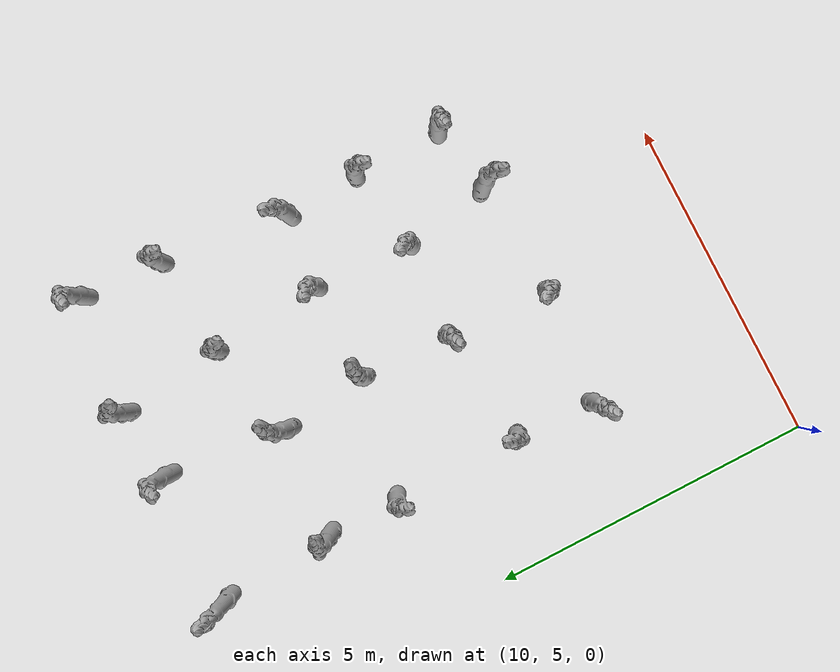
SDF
<sdf version="1.6">
 <world name="default">
  <model name="asparagus_47">
   <pose>11.7378 7.58479 0 0 -0 -2.63692</pose>
   <static>1</static>
   <link name="asparagus_47">
    <visual name="visual">
     <geometry>
      <mesh><uri>model://Asparagus/meshes/asparagus.obj</uri><scale>0.3 0.3 0.360139</scale></mesh>
     </geometry>
    </visual>
    <collision name="collision">
     <geometry>
      <mesh><uri>model://Asparagus/meshes/asparagus.obj</uri><scale>0.3 0.3 0.360139</scale></mesh>
     </geometry>
    </collision>
   </link>
  </model>
  <model name="asparagus_50">
   <pose>11.9252 8.88474 0 0 -0 1.19123</pose>
   <static>1</static>
   <link name="asparagus_50">
    <visual name="visual">
     <geometry>
      <mesh><uri>model://Asparagus/meshes/asparagus.obj</uri><scale>0.3 0.3 0.366326</scale></mesh>
     </geometry>
    </visual>
    <collision name="collision">
     <geometry>
      <mesh><uri>model://Asparagus/meshes/asparagus.obj</uri><scale>0.3 0.3 0.366326</scale></mesh>
     </geometry>
    </collision>
   </link>
  </model>
  <model name="asparagus_53">
   <pose>11.8709 10.7469 0 0 -0 -2.00169</pose>
   <static>1</static>
   <link name="asparagus_53">
    <visual name="visual">
     <geometry>
      <mesh><uri>model://Asparagus/meshes/asparagus.obj</uri><scale>0.3 0.3 0.435216</scale></mesh>
     </geometry>
    </visual>
    <collision name="collision">
     <geometry>
      <mesh><uri>model://Asparagus/meshes/asparagus.obj</uri><scale>0.3 0.3 0.435216</scale></mesh>
     </geometry>
    </collision>
   </link>
  </model>
  <model name="asparagus_56">
   <pose>11.9555 11.8867 0 0 -0 -0.396675</pose>
   <static>1</static>
   <link name="asparagus_56">
    <visual name="visual">
     <geometry>
      <mesh><uri>model://Asparagus/meshes/asparagus.obj</uri><scale>0.3 0.3 0.581473</scale></mesh>
     </geometry>
    </visual>
    <collision name="collision">
     <geometry>
      <mesh><uri>model://Asparagus/meshes/asparagus.obj</uri><scale>0.3 0.3 0.581473</scale></mesh>
     </geometry>
    </collision>
   </link>
  </model>
  <model name="asparagus_59">
   <pose>11.7198 13.7906 0 0 -0 1.77032</pose>
   <static>1</static>
   <link name="asparagus_59">
    <visual name="visual">
     <geometry>
      <mesh><uri>model://Asparagus/meshes/asparagus.obj</uri><scale>0.3 0.3 0.425991</scale></mesh>
     </geometry>
    </visual>
    <collision name="collision">
     <geometry>
      <mesh><uri>model://Asparagus/meshes/asparagus.obj</uri><scale>0.3 0.3 0.425991</scale></mesh>
     </geometry>
    </collision>
   </link>
  </model>
  <model name="asparagus_107">
   <pose>13.5485 7.50632 0 0 -0 2.07589</pose>
   <static>1</static>
   <link name="asparagus_107">
    <visual name="visual">
     <geometry>
      <mesh><uri>model://Asparagus/meshes/asparagus.obj</uri><scale>0.3 0.3 0.34234</scale></mesh>
     </geometry>
    </visual>
    <collision name="collision">
     <geometry>
      <mesh><uri>model://Asparagus/meshes/asparagus.obj</uri><scale>0.3 0.3 0.34234</scale></mesh>
     </geometry>
    </collision>
   </link>
  </model>
  <model name="asparagus_110">
   <pose>13.6058 9.03977 0 0 -0 -2.91913</pose>
   <static>1</static>
   <link name="asparagus_110">
    <visual name="visual">
     <geometry>
      <mesh><uri>model://Asparagus/meshes/asparagus.obj</uri><scale>0.3 0.3 0.522745</scale></mesh>
     </geometry>
    </visual>
    <collision name="collision">
     <geometry>
      <mesh><uri>model://Asparagus/meshes/asparagus.obj</uri><scale>0.3 0.3 0.522745</scale></mesh>
     </geometry>
    </collision>
   </link>
  </model>
  <model name="asparagus_113">
   <pose>13.7734 10.3972 0 0 -0 -0.076825</pose>
   <static>1</static>
   <link name="asparagus_113">
    <visual name="visual">
     <geometry>
      <mesh><uri>model://Asparagus/meshes/asparagus.obj</uri><scale>0.3 0.3 0.511219</scale></mesh>
     </geometry>
    </visual>
    <collision name="collision">
     <geometry>
      <mesh><uri>model://Asparagus/meshes/asparagus.obj</uri><scale>0.3 0.3 0.511219</scale></mesh>
     </geometry>
    </collision>
   </link>
  </model>
  <model name="asparagus_116">
   <pose>13.6093 11.7654 0 0 -0 0.402927</pose>
   <static>1</static>
   <link name="asparagus_116">
    <visual name="visual">
     <geometry>
      <mesh><uri>model://Asparagus/meshes/asparagus.obj</uri><scale>0.3 0.3 0.562446</scale></mesh>
     </geometry>
    </visual>
    <collision name="collision">
     <geometry>
      <mesh><uri>model://Asparagus/meshes/asparagus.obj</uri><scale>0.3 0.3 0.562446</scale></mesh>
     </geometry>
    </collision>
   </link>
  </model>
  <model name="asparagus_119">
   <pose>13.6797 13.6157 0 0 -0 -2.68748</pose>
   <static>1</static>
   <link name="asparagus_119">
    <visual name="visual">
     <geometry>
      <mesh><uri>model://Asparagus/meshes/asparagus.obj</uri><scale>0.3 0.3 0.49245</scale></mesh>
     </geometry>
    </visual>
    <collision name="collision">
     <geometry>
      <mesh><uri>model://Asparagus/meshes/asparagus.obj</uri><scale>0.3 0.3 0.49245</scale></mesh>
     </geometry>
    </collision>
   </link>
  </model>
  <model name="asparagus_167">
   <pose>15.2911 7.55536 0 0 -0 -1.99809</pose>
   <static>1</static>
   <link name="asparagus_167">
    <visual name="visual">
     <geometry>
      <mesh><uri>model://Asparagus/meshes/asparagus.obj</uri><scale>0.3 0.3 0.561568</scale></mesh>
     </geometry>
    </visual>
    <collision name="collision">
     <geometry>
      <mesh><uri>model://Asparagus/meshes/asparagus.obj</uri><scale>0.3 0.3 0.561568</scale></mesh>
     </geometry>
    </collision>
   </link>
  </model>
  <model name="asparagus_170">
   <pose>15.0683 8.99126 0 0 -0 2.09048</pose>
   <static>1</static>
   <link name="asparagus_170">
    <visual name="visual">
     <geometry>
      <mesh><uri>model://Asparagus/meshes/asparagus.obj</uri><scale>0.3 0.3 0.373085</scale></mesh>
     </geometry>
    </visual>
    <collision name="collision">
     <geometry>
      <mesh><uri>model://Asparagus/meshes/asparagus.obj</uri><scale>0.3 0.3 0.373085</scale></mesh>
     </geometry>
    </collision>
   </link>
  </model>
  <model name="asparagus_173">
   <pose>15.1324 10.4882 0 0 -0 2.44728</pose>
   <static>1</static>
   <link name="asparagus_173">
    <visual name="visual">
     <geometry>
      <mesh><uri>model://Asparagus/meshes/asparagus.obj</uri><scale>0.3 0.3 0.408602</scale></mesh>
     </geometry>
    </visual>
    <collision name="collision">
     <geometry>
      <mesh><uri>model://Asparagus/meshes/asparagus.obj</uri><scale>0.3 0.3 0.408602</scale></mesh>
     </geometry>
    </collision>
   </link>
  </model>
  <model name="asparagus_176">
   <pose>15.0519 12.1032 0 0 -0 -1.44775</pose>
   <static>1</static>
   <link name="asparagus_176">
    <visual name="visual">
     <geometry>
      <mesh><uri>model://Asparagus/meshes/asparagus.obj</uri><scale>0.3 0.3 0.303938</scale></mesh>
     </geometry>
    </visual>
    <collision name="collision">
     <geometry>
      <mesh><uri>model://Asparagus/meshes/asparagus.obj</uri><scale>0.3 0.3 0.303938</scale></mesh>
     </geometry>
    </collision>
   </link>
  </model>
  <model name="asparagus_179">
   <pose>14.8796 13.701 0 0 -0 -1.1765</pose>
   <static>1</static>
   <link name="asparagus_179">
    <visual name="visual">
     <geometry>
      <mesh><uri>model://Asparagus/meshes/asparagus.obj</uri><scale>0.3 0.3 0.418127</scale></mesh>
     </geometry>
    </visual>
    <collision name="collision">
     <geometry>
      <mesh><uri>model://Asparagus/meshes/asparagus.obj</uri><scale>0.3 0.3 0.418127</scale></mesh>
     </geometry>
    </collision>
   </link>
  </model>
  <model name="asparagus_227">
   <pose>16.3192 7.7962 0 0 -0 3.05749</pose>
   <static>1</static>
   <link name="asparagus_227">
    <visual name="visual">
     <geometry>
      <mesh><uri>model://Asparagus/meshes/asparagus.obj</uri><scale>0.3 0.3 0.466031</scale></mesh>
     </geometry>
    </visual>
    <collision name="collision">
     <geometry>
      <mesh><uri>model://Asparagus/meshes/asparagus.obj</uri><scale>0.3 0.3 0.466031</scale></mesh>
     </geometry>
    </collision>
   </link>
  </model>
  <model name="asparagus_230">
   <pose>16.3558 9.09555 0 0 -0 -1.97043</pose>
   <static>1</static>
   <link name="asparagus_230">
    <visual name="visual">
     <geometry>
      <mesh><uri>model://Asparagus/meshes/asparagus.obj</uri><scale>0.3 0.3 0.351114</scale></mesh>
     </geometry>
    </visual>
    <collision name="collision">
     <geometry>
      <mesh><uri>model://Asparagus/meshes/asparagus.obj</uri><scale>0.3 0.3 0.351114</scale></mesh>
     </geometry>
    </collision>
   </link>
  </model>
  <model name="asparagus_233">
   <pose>16.3343 10.3757 0 0 -0 1.46024</pose>
   <static>1</static>
   <link name="asparagus_233">
    <visual name="visual">
     <geometry>
      <mesh><uri>model://Asparagus/meshes/asparagus.obj</uri><scale>0.3 0.3 0.387647</scale></mesh>
     </geometry>
    </visual>
    <collision name="collision">
     <geometry>
      <mesh><uri>model://Asparagus/meshes/asparagus.obj</uri><scale>0.3 0.3 0.387647</scale></mesh>
     </geometry>
    </collision>
   </link>
  </model>
  <model name="asparagus_236">
   <pose>16.563 12.2284 0 0 -0 -1.82049</pose>
   <static>1</static>
   <link name="asparagus_236">
    <visual name="visual">
     <geometry>
      <mesh><uri>model://Asparagus/meshes/asparagus.obj</uri><scale>0.3 0.3 0.378926</scale></mesh>
     </geometry>
    </visual>
    <collision name="collision">
     <geometry>
      <mesh><uri>model://Asparagus/meshes/asparagus.obj</uri><scale>0.3 0.3 0.378926</scale></mesh>
     </geometry>
    </collision>
   </link>
  </model>
  <model name="asparagus_239">
   <pose>16.5894 13.5479 0 0 -0 -3.01567</pose>
   <static>1</static>
   <link name="asparagus_239">
    <visual name="visual">
     <geometry>
      <mesh><uri>model://Asparagus/meshes/asparagus.obj</uri><scale>0.3 0.3 0.408114</scale></mesh>
     </geometry>
    </visual>
    <collision name="collision">
     <geometry>
      <mesh><uri>model://Asparagus/meshes/asparagus.obj</uri><scale>0.3 0.3 0.408114</scale></mesh>
     </geometry>
    </collision>
   </link>
  </model>
 </world>
</sdf>
